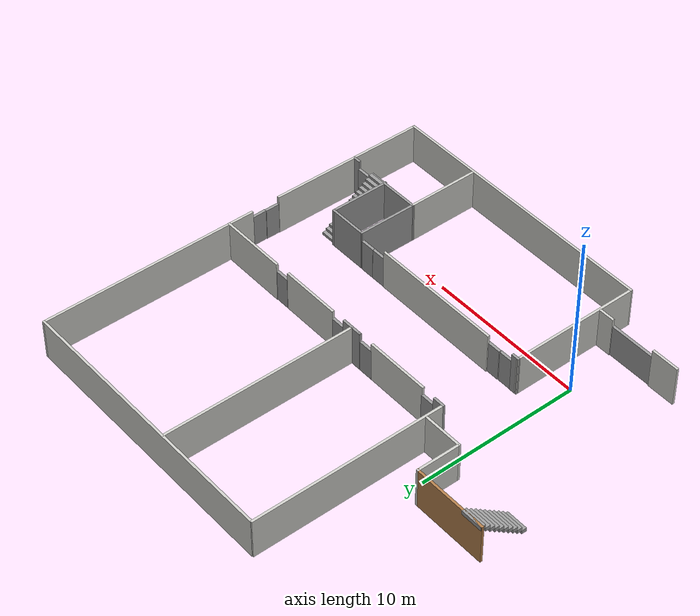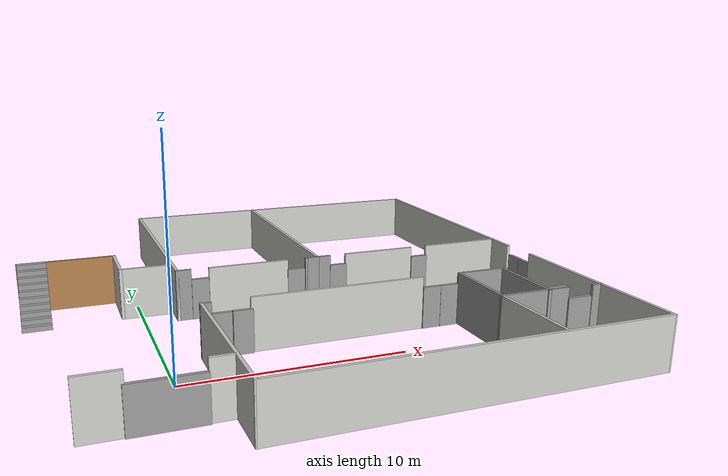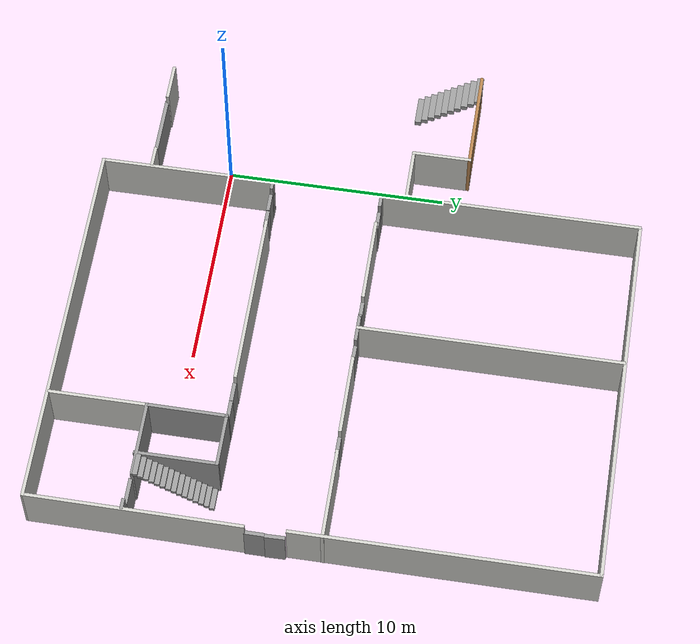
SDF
<sdf version="1.7">
 <model name="mts_dept">
  <pose>-3.28775 6.83696 0 0 -0 0</pose>
  <link name="Door_15">
   <collision name="Door_15_Collision">
    <geometry><box><size>1.25 0.17 2</size></box></geometry>
    <pose>0 0 1 0 -0 0</pose>
   </collision>
   <visual name="Door_15_Visual">
    <pose>0 0 1 0 -0 0</pose>
    <geometry><box><size>1.25 0.17 2</size></box></geometry>
    <material>
     <script><uri>file://media/materials/scripts/gazebo.material</uri><name>Gazebo/Grey</name></script>
    </material>
   </visual>
   <pose>21.2511 -8.1066 0 0 -0 0</pose>
  </link>
  <link name="Door_16">
   <collision name="Door_16_Collision">
    <geometry><box><size>0.9 0.17 2</size></box></geometry>
    <pose>0 0 1 0 -0 0</pose>
   </collision>
   <visual name="Door_16_Visual">
    <pose>0 0 1 0 -0 0</pose>
    <geometry><box><size>0.9 0.17 2</size></box></geometry>
    <material>
     <script><uri>file://media/materials/scripts/gazebo.material</uri><name>Gazebo/Grey</name></script>
    </material>
   </visual>
   <pose>16.6903 -4.48944 0 0 -0 0</pose>
  </link>
  <link name="Door_17">
   <collision name="Door_17_Collision">
    <geometry><box><size>0.9 0.17 2</size></box></geometry>
    <pose>0 0 1 0 -0 0</pose>
   </collision>
   <visual name="Door_17_Visual">
    <pose>0 0 1 0 -0 0</pose>
    <geometry><box><size>0.9 0.17 2</size></box></geometry>
    <material>
     <script><uri>file://media/materials/scripts/gazebo.material</uri><name>Gazebo/Grey</name></script>
    </material>
   </visual>
   <pose>15.7856 -4.48922 0 0 -0 0</pose>
  </link>
  <link name="Door_18">
   <collision name="Door_18_Collision">
    <geometry><box><size>0.9 0.17 2</size></box></geometry>
    <pose>0 0 1 0 -0 0</pose>
   </collision>
   <visual name="Door_18_Visual">
    <pose>0 0 1 0 -0 0</pose>
    <geometry><box><size>0.9 0.17 2</size></box></geometry>
    <material>
     <script><uri>file://media/materials/scripts/gazebo.material</uri><name>Gazebo/Grey</name></script>
    </material>
   </visual>
   <pose>5.7737 -4.55958 0 0 -0 0</pose>
  </link>
  <link name="Door_19">
   <collision name="Door_19_Collision">
    <geometry><box><size>0.9 0.17 2</size></box></geometry>
    <pose>0 0 1 0 -0 0</pose>
   </collision>
   <visual name="Door_19_Visual">
    <pose>0 0 1 0 -0 0</pose>
    <geometry><box><size>0.9 0.17 2</size></box></geometry>
    <material>
     <script><uri>file://media/materials/scripts/gazebo.material</uri><name>Gazebo/Grey</name></script>
    </material>
   </visual>
   <pose>6.71198 -4.54003 0 0 -0 0</pose>
  </link>
  <link name="Door_21">
   <collision name="Door_21_Collision">
    <geometry><box><size>3 0.17 2</size></box></geometry>
    <pose>0 0 1 0 -0 0</pose>
   </collision>
   <visual name="Door_21_Visual">
    <pose>0 0 1 0 -0 0</pose>
    <geometry><box><size>3 0.17 2</size></box></geometry>
    <material>
     <script><uri>file://media/materials/scripts/gazebo.material</uri><name>Gazebo/Grey</name></script>
    </material>
   </visual>
   <pose>2.44244 -10.26 0 0 -0 0</pose>
  </link>
  <link name="Door_24">
   <collision name="Door_24_Collision">
    <geometry><box><size>0.9 0.17 2</size></box></geometry>
    <pose>0 0 1 0 -0 0</pose>
   </collision>
   <visual name="Door_24_Visual">
    <pose>0 0 1 0 -0 0</pose>
    <geometry><box><size>0.9 0.17 2</size></box></geometry>
    <material>
     <script><uri>file://media/materials/scripts/gazebo.material</uri><name>Gazebo/Grey</name></script>
    </material>
   </visual>
   <pose>13.1152 0.479726 0 0 -0 0</pose>
  </link>
  <link name="Door_25">
   <collision name="Door_25_Collision">
    <geometry><box><size>0.9 0.17 2</size></box></geometry>
    <pose>0 0 1 0 -0 0</pose>
   </collision>
   <visual name="Door_25_Visual">
    <pose>0 0 1 0 -0 0</pose>
    <geometry><box><size>0.9 0.17 2</size></box></geometry>
    <material>
     <script><uri>file://media/materials/scripts/gazebo.material</uri><name>Gazebo/Grey</name></script>
    </material>
   </visual>
   <pose>10.8334 0.469069 0 0 -0 0</pose>
  </link>
  <link name="Door_26">
   <collision name="Door_26_Collision">
    <geometry><box><size>0.9 0.17 2</size></box></geometry>
    <pose>0 0 1 0 -0 0</pose>
   </collision>
   <visual name="Door_26_Visual">
    <pose>0 0 1 0 -0 0</pose>
    <geometry><box><size>0.9 0.17 2</size></box></geometry>
    <material>
     <script><uri>file://media/materials/scripts/gazebo.material</uri><name>Gazebo/Grey</name></script>
    </material>
   </visual>
   <pose>5.99959 0.502503 0 0 -0 0</pose>
  </link>
  <link name="Door_27">
   <collision name="Door_27_Collision">
    <geometry><box><size>0.9 0.17 2</size></box></geometry>
    <pose>0 0 1 0 -0 0</pose>
   </collision>
   <visual name="Door_27_Visual">
    <pose>0 0 1 0 -0 0</pose>
    <geometry><box><size>0.9 0.17 2</size></box></geometry>
    <material>
     <script><uri>file://media/materials/scripts/gazebo.material</uri><name>Gazebo/Grey</name></script>
    </material>
   </visual>
   <pose>17.7287 0.488148 0 0 -0 0</pose>
  </link>
  <link name="Door_28">
   <collision name="Door_28_Collision">
    <geometry><box><size>0.9 0.17 2</size></box></geometry>
    <pose>0 0 1 0 -0 0</pose>
   </collision>
   <visual name="Door_28_Visual">
    <pose>0 0 1 0 -0 0</pose>
    <geometry><box><size>0.9 0.17 2</size></box></geometry>
    <material>
     <script><uri>file://media/materials/scripts/gazebo.material</uri><name>Gazebo/Grey</name></script>
    </material>
   </visual>
   <pose>22.4147 -1.51478 0 0 -0 1.58982</pose>
  </link>
  <link name="Door_29">
   <collision name="Door_29_Collision">
    <geometry><box><size>0.9 0.17 2</size></box></geometry>
    <pose>0 0 1 0 -0 0</pose>
   </collision>
   <visual name="Door_29_Visual">
    <pose>0 0 1 0 -0 0</pose>
    <geometry><box><size>0.9 0.17 2</size></box></geometry>
    <material>
     <script><uri>file://media/materials/scripts/gazebo.material</uri><name>Gazebo/Grey</name></script>
    </material>
   </visual>
   <pose>22.3942 -2.40723 0 0 -0 1.5708</pose>
  </link>
  <link name="Stairs_2">
   <visual name="Stairs_2_Visual_0">
    <pose>20.1606 -4.63881 0.083333 0 -0 0</pose>
    <geometry><box><size>1 0.233333 0.166667</size></box></geometry>
    <material>
     <script><uri>file://media/materials/scripts/gazebo.material</uri><name>Gazebo/Grey</name></script>
     <ambient>1 1 1 1</ambient>
    </material>
    <meta><layer>0</layer></meta>
   </visual>
   <collision name="Stairs_2_Collision_0">
    <geometry><box><size>1 0.233333 0.166667</size></box></geometry>
    <pose>20.1606 -4.63881 0.083333 0 -0 0</pose>
   </collision>
   <visual name="Stairs_2_Visual_1">
    <pose>20.1606 -4.87214 0.25 0 -0 0</pose>
    <geometry><box><size>1 0.233333 0.166667</size></box></geometry>
    <material>
     <script><uri>file://media/materials/scripts/gazebo.material</uri><name>Gazebo/Grey</name></script>
     <ambient>1 1 1 1</ambient>
    </material>
    <meta><layer>0</layer></meta>
   </visual>
   <collision name="Stairs_2_Collision_1">
    <geometry><box><size>1 0.233333 0.166667</size></box></geometry>
    <pose>20.1606 -4.87214 0.25 0 -0 0</pose>
   </collision>
   <visual name="Stairs_2_Visual_2">
    <pose>20.1606 -5.10548 0.416667 0 -0 0</pose>
    <geometry><box><size>1 0.233333 0.166667</size></box></geometry>
    <material>
     <script><uri>file://media/materials/scripts/gazebo.material</uri><name>Gazebo/Grey</name></script>
     <ambient>1 1 1 1</ambient>
    </material>
    <meta><layer>0</layer></meta>
   </visual>
   <collision name="Stairs_2_Collision_2">
    <geometry><box><size>1 0.233333 0.166667</size></box></geometry>
    <pose>20.1606 -5.10548 0.416667 0 -0 0</pose>
   </collision>
   <visual name="Stairs_2_Visual_3">
    <pose>20.1606 -5.33881 0.583333 0 -0 0</pose>
    <geometry><box><size>1 0.233333 0.166667</size></box></geometry>
    <material>
     <script><uri>file://media/materials/scripts/gazebo.material</uri><name>Gazebo/Grey</name></script>
     <ambient>1 1 1 1</ambient>
    </material>
    <meta><layer>0</layer></meta>
   </visual>
   <collision name="Stairs_2_Collision_3">
    <geometry><box><size>1 0.233333 0.166667</size></box></geometry>
    <pose>20.1606 -5.33881 0.583333 0 -0 0</pose>
   </collision>
   <visual name="Stairs_2_Visual_4">
    <pose>20.1606 -5.57214 0.75 0 -0 0</pose>
    <geometry><box><size>1 0.233333 0.166667</size></box></geometry>
    <material>
     <script><uri>file://media/materials/scripts/gazebo.material</uri><name>Gazebo/Grey</name></script>
     <ambient>1 1 1 1</ambient>
    </material>
    <meta><layer>0</layer></meta>
   </visual>
   <collision name="Stairs_2_Collision_4">
    <geometry><box><size>1 0.233333 0.166667</size></box></geometry>
    <pose>20.1606 -5.57214 0.75 0 -0 0</pose>
   </collision>
   <visual name="Stairs_2_Visual_5">
    <pose>20.1606 -5.80548 0.916667 0 -0 0</pose>
    <geometry><box><size>1 0.233333 0.166667</size></box></geometry>
    <material>
     <script><uri>file://media/materials/scripts/gazebo.material</uri><name>Gazebo/Grey</name></script>
     <ambient>1 1 1 1</ambient>
    </material>
    <meta><layer>0</layer></meta>
   </visual>
   <collision name="Stairs_2_Collision_5">
    <geometry><box><size>1 0.233333 0.166667</size></box></geometry>
    <pose>20.1606 -5.80548 0.916667 0 -0 0</pose>
   </collision>
   <visual name="Stairs_2_Visual_6">
    <pose>20.1606 -6.03881 1.08333 0 -0 0</pose>
    <geometry><box><size>1 0.233333 0.166667</size></box></geometry>
    <material>
     <script><uri>file://media/materials/scripts/gazebo.material</uri><name>Gazebo/Grey</name></script>
     <ambient>1 1 1 1</ambient>
    </material>
    <meta><layer>0</layer></meta>
   </visual>
   <collision name="Stairs_2_Collision_6">
    <geometry><box><size>1 0.233333 0.166667</size></box></geometry>
    <pose>20.1606 -6.03881 1.08333 0 -0 0</pose>
   </collision>
   <visual name="Stairs_2_Visual_7">
    <pose>20.1606 -6.27214 1.25 0 -0 0</pose>
    <geometry><box><size>1 0.233333 0.166667</size></box></geometry>
    <material>
     <script><uri>file://media/materials/scripts/gazebo.material</uri><name>Gazebo/Grey</name></script>
     <ambient>1 1 1 1</ambient>
    </material>
    <meta><layer>0</layer></meta>
   </visual>
   <collision name="Stairs_2_Collision_7">
    <geometry><box><size>1 0.233333 0.166667</size></box></geometry>
    <pose>20.1606 -6.27214 1.25 0 -0 0</pose>
   </collision>
   <visual name="Stairs_2_Visual_8">
    <pose>20.1606 -6.50548 1.41667 0 -0 0</pose>
    <geometry><box><size>1 0.233333 0.166667</size></box></geometry>
    <material>
     <script><uri>file://media/materials/scripts/gazebo.material</uri><name>Gazebo/Grey</name></script>
     <ambient>1 1 1 1</ambient>
    </material>
    <meta><layer>0</layer></meta>
   </visual>
   <collision name="Stairs_2_Collision_8">
    <geometry><box><size>1 0.233333 0.166667</size></box></geometry>
    <pose>20.1606 -6.50548 1.41667 0 -0 0</pose>
   </collision>
   <visual name="Stairs_2_Visual_9">
    <pose>20.1606 -6.73881 1.58333 0 -0 0</pose>
    <geometry><box><size>1 0.233333 0.166667</size></box></geometry>
    <material>
     <script><uri>file://media/materials/scripts/gazebo.material</uri><name>Gazebo/Grey</name></script>
     <ambient>1 1 1 1</ambient>
    </material>
    <meta><layer>0</layer></meta>
   </visual>
   <collision name="Stairs_2_Collision_9">
    <geometry><box><size>1 0.233333 0.166667</size></box></geometry>
    <pose>20.1606 -6.73881 1.58333 0 -0 0</pose>
   </collision>
   <visual name="Stairs_2_Visual_10">
    <pose>20.1606 -6.97214 1.75 0 -0 0</pose>
    <geometry><box><size>1 0.233333 0.166667</size></box></geometry>
    <material>
     <script><uri>file://media/materials/scripts/gazebo.material</uri><name>Gazebo/Grey</name></script>
     <ambient>1 1 1 1</ambient>
    </material>
    <meta><layer>0</layer></meta>
   </visual>
   <collision name="Stairs_2_Collision_10">
    <geometry><box><size>1 0.233333 0.166667</size></box></geometry>
    <pose>20.1606 -6.97214 1.75 0 -0 0</pose>
   </collision>
   <visual name="Stairs_2_Visual_11">
    <pose>20.1606 -7.20548 1.91667 0 -0 0</pose>
    <geometry><box><size>1 0.233333 0.166667</size></box></geometry>
    <material>
     <script><uri>file://media/materials/scripts/gazebo.material</uri><name>Gazebo/Grey</name></script>
     <ambient>1 1 1 1</ambient>
    </material>
    <meta><layer>0</layer></meta>
   </visual>
   <collision name="Stairs_2_Collision_11">
    <geometry><box><size>1 0.233333 0.166667</size></box></geometry>
    <pose>20.1606 -7.20548 1.91667 0 -0 0</pose>
   </collision>
   <visual name="Stairs_2_Visual_12">
    <pose>20.1606 -7.43881 2.08333 0 -0 0</pose>
    <geometry><box><size>1 0.233333 0.166667</size></box></geometry>
    <material>
     <script><uri>file://media/materials/scripts/gazebo.material</uri><name>Gazebo/Grey</name></script>
     <ambient>1 1 1 1</ambient>
    </material>
    <meta><layer>0</layer></meta>
   </visual>
   <collision name="Stairs_2_Collision_12">
    <geometry><box><size>1 0.233333 0.166667</size></box></geometry>
    <pose>20.1606 -7.43881 2.08333 0 -0 0</pose>
   </collision>
   <visual name="Stairs_2_Visual_13">
    <pose>20.1606 -7.67214 2.25 0 -0 0</pose>
    <geometry><box><size>1 0.233333 0.166667</size></box></geometry>
    <material>
     <script><uri>file://media/materials/scripts/gazebo.material</uri><name>Gazebo/Grey</name></script>
     <ambient>1 1 1 1</ambient>
    </material>
    <meta><layer>0</layer></meta>
   </visual>
   <collision name="Stairs_2_Collision_13">
    <geometry><box><size>1 0.233333 0.166667</size></box></geometry>
    <pose>20.1606 -7.67214 2.25 0 -0 0</pose>
   </collision>
   <visual name="Stairs_2_Visual_14">
    <pose>20.1606 -7.90548 2.41667 0 -0 0</pose>
    <geometry><box><size>1 0.233333 0.166667</size></box></geometry>
    <material>
     <script><uri>file://media/materials/scripts/gazebo.material</uri><name>Gazebo/Grey</name></script>
     <ambient>1 1 1 1</ambient>
    </material>
    <meta><layer>0</layer></meta>
   </visual>
   <collision name="Stairs_2_Collision_14">
    <geometry><box><size>1 0.233333 0.166667</size></box></geometry>
    <pose>20.1606 -7.90548 2.41667 0 -0 0</pose>
   </collision>
  </link>
  <link name="Stairs_4">
   <visual name="Stairs_4_Visual_0">
    <pose>-1.55868 1.45214 0.125 0 0 -3.14159</pose>
    <geometry><box><size>1.36 0.304864 0.25</size></box></geometry>
    <material>
     <script><uri>file://media/materials/scripts/gazebo.material</uri><name>Gazebo/Grey</name></script>
     <ambient>0.368627 0.360784 0.392157 1</ambient>
    </material>
    <meta><layer>0</layer></meta>
   </visual>
   <collision name="Stairs_4_Collision_0">
    <geometry><box><size>1.36 0.304864 0.25</size></box></geometry>
    <pose>-1.55868 1.45214 0.125 0 0 -3.14159</pose>
   </collision>
   <visual name="Stairs_4_Visual_1">
    <pose>-1.55868 1.757 0.375 0 0 -3.14159</pose>
    <geometry><box><size>1.36 0.304864 0.25</size></box></geometry>
    <material>
     <script><uri>file://media/materials/scripts/gazebo.material</uri><name>Gazebo/Grey</name></script>
     <ambient>0.368627 0.360784 0.392157 1</ambient>
    </material>
    <meta><layer>0</layer></meta>
   </visual>
   <collision name="Stairs_4_Collision_1">
    <geometry><box><size>1.36 0.304864 0.25</size></box></geometry>
    <pose>-1.55868 1.757 0.375 0 0 -3.14159</pose>
   </collision>
   <visual name="Stairs_4_Visual_2">
    <pose>-1.55868 2.06187 0.625 0 0 -3.14159</pose>
    <geometry><box><size>1.36 0.304864 0.25</size></box></geometry>
    <material>
     <script><uri>file://media/materials/scripts/gazebo.material</uri><name>Gazebo/Grey</name></script>
     <ambient>0.368627 0.360784 0.392157 1</ambient>
    </material>
    <meta><layer>0</layer></meta>
   </visual>
   <collision name="Stairs_4_Collision_2">
    <geometry><box><size>1.36 0.304864 0.25</size></box></geometry>
    <pose>-1.55868 2.06187 0.625 0 0 -3.14159</pose>
   </collision>
   <visual name="Stairs_4_Visual_3">
    <pose>-1.55868 2.36673 0.875 0 0 -3.14159</pose>
    <geometry><box><size>1.36 0.304864 0.25</size></box></geometry>
    <material>
     <script><uri>file://media/materials/scripts/gazebo.material</uri><name>Gazebo/Grey</name></script>
     <ambient>0.368627 0.360784 0.392157 1</ambient>
    </material>
    <meta><layer>0</layer></meta>
   </visual>
   <collision name="Stairs_4_Collision_3">
    <geometry><box><size>1.36 0.304864 0.25</size></box></geometry>
    <pose>-1.55868 2.36673 0.875 0 0 -3.14159</pose>
   </collision>
   <visual name="Stairs_4_Visual_4">
    <pose>-1.55868 2.67159 1.125 0 0 -3.14159</pose>
    <geometry><box><size>1.36 0.304864 0.25</size></box></geometry>
    <material>
     <script><uri>file://media/materials/scripts/gazebo.material</uri><name>Gazebo/Grey</name></script>
     <ambient>0.368627 0.360784 0.392157 1</ambient>
    </material>
    <meta><layer>0</layer></meta>
   </visual>
   <collision name="Stairs_4_Collision_4">
    <geometry><box><size>1.36 0.304864 0.25</size></box></geometry>
    <pose>-1.55868 2.67159 1.125 0 0 -3.14159</pose>
   </collision>
   <visual name="Stairs_4_Visual_5">
    <pose>-1.55868 2.97646 1.375 0 0 -3.14159</pose>
    <geometry><box><size>1.36 0.304864 0.25</size></box></geometry>
    <material>
     <script><uri>file://media/materials/scripts/gazebo.material</uri><name>Gazebo/Grey</name></script>
     <ambient>0.368627 0.360784 0.392157 1</ambient>
    </material>
    <meta><layer>0</layer></meta>
   </visual>
   <collision name="Stairs_4_Collision_5">
    <geometry><box><size>1.36 0.304864 0.25</size></box></geometry>
    <pose>-1.55868 2.97646 1.375 0 0 -3.14159</pose>
   </collision>
   <visual name="Stairs_4_Visual_6">
    <pose>-1.55868 3.28132 1.625 0 0 -3.14159</pose>
    <geometry><box><size>1.36 0.304864 0.25</size></box></geometry>
    <material>
     <script><uri>file://media/materials/scripts/gazebo.material</uri><name>Gazebo/Grey</name></script>
     <ambient>0.368627 0.360784 0.392157 1</ambient>
    </material>
    <meta><layer>0</layer></meta>
   </visual>
   <collision name="Stairs_4_Collision_6">
    <geometry><box><size>1.36 0.304864 0.25</size></box></geometry>
    <pose>-1.55868 3.28132 1.625 0 0 -3.14159</pose>
   </collision>
   <visual name="Stairs_4_Visual_7">
    <pose>-1.55868 3.58619 1.875 0 0 -3.14159</pose>
    <geometry><box><size>1.36 0.304864 0.25</size></box></geometry>
    <material>
     <script><uri>file://media/materials/scripts/gazebo.material</uri><name>Gazebo/Grey</name></script>
     <ambient>0.368627 0.360784 0.392157 1</ambient>
    </material>
    <meta><layer>0</layer></meta>
   </visual>
   <collision name="Stairs_4_Collision_7">
    <geometry><box><size>1.36 0.304864 0.25</size></box></geometry>
    <pose>-1.55868 3.58619 1.875 0 0 -3.14159</pose>
   </collision>
   <visual name="Stairs_4_Visual_8">
    <pose>-1.55868 3.89105 2.125 0 0 -3.14159</pose>
    <geometry><box><size>1.36 0.304864 0.25</size></box></geometry>
    <material>
     <script><uri>file://media/materials/scripts/gazebo.material</uri><name>Gazebo/Grey</name></script>
     <ambient>0.368627 0.360784 0.392157 1</ambient>
    </material>
    <meta><layer>0</layer></meta>
   </visual>
   <collision name="Stairs_4_Collision_8">
    <geometry><box><size>1.36 0.304864 0.25</size></box></geometry>
    <pose>-1.55868 3.89105 2.125 0 0 -3.14159</pose>
   </collision>
   <visual name="Stairs_4_Visual_9">
    <pose>-1.55868 4.19592 2.375 0 0 -3.14159</pose>
    <geometry><box><size>1.36 0.304864 0.25</size></box></geometry>
    <material>
     <script><uri>file://media/materials/scripts/gazebo.material</uri><name>Gazebo/Grey</name></script>
     <ambient>0.368627 0.360784 0.392157 1</ambient>
    </material>
    <meta><layer>0</layer></meta>
   </visual>
   <collision name="Stairs_4_Collision_9">
    <geometry><box><size>1.36 0.304864 0.25</size></box></geometry>
    <pose>-1.55868 4.19592 2.375 0 0 -3.14159</pose>
   </collision>
  </link>
  <link name="Wall_111">
   <collision name="Wall_111_Collision">
    <geometry><box><size>3.5 0.15 2.5</size></box></geometry>
    <pose>0 0 1.25 0 -0 0</pose>
   </collision>
   <visual name="Wall_111_Visual">
    <pose>0 0 1.25 0 -0 0</pose>
    <geometry><box><size>3.5 0.15 2.5</size></box></geometry>
    <material>
     <script><uri>file://media/materials/scripts/gazebo.material</uri><name>Gazebo/Grey</name></script>
     <ambient>1 1 1 1</ambient>
    </material>
    <meta><layer>0</layer></meta>
   </visual>
   <pose>18.9077 -8.02797 0 0 -0 3.14159</pose>
  </link>
  <link name="Wall_112">
   <collision name="Wall_112_Collision">
    <geometry><box><size>4.5 0.15 2.5</size></box></geometry>
    <pose>0 0 1.25 0 -0 0</pose>
   </collision>
   <visual name="Wall_112_Visual">
    <pose>0 0 1.25 0 -0 0</pose>
    <geometry><box><size>4.5 0.15 2.5</size></box></geometry>
    <material>
     <script><uri>file://media/materials/scripts/gazebo.material</uri><name>Gazebo/CeilingTiled</name></script>
     <ambient>1 1 1 1</ambient>
    </material>
    <meta><layer>0</layer></meta>
   </visual>
   <pose>17.2327 -10.203 0 0 -0 -1.5708</pose>
  </link>
  <link name="Wall_114">
   <collision name="Wall_114_Collision">
    <geometry><box><size>0.5 0.15 2.5</size></box></geometry>
    <pose>0 0 1.25 0 -0 0</pose>
   </collision>
   <visual name="Wall_114_Visual">
    <pose>0 0 1.25 0 -0 0</pose>
    <geometry><box><size>0.5 0.15 2.5</size></box></geometry>
    <material>
     <script><uri>file://media/materials/scripts/gazebo.material</uri><name>Gazebo/Grey</name></script>
     <ambient>1 1 1 1</ambient>
    </material>
    <meta><layer>0</layer></meta>
   </visual>
   <pose>22.0983 -8.14592 0 0 -0 3.14159</pose>
  </link>
  <link name="Wall_116">
   <collision name="Wall_116_Collision">
    <geometry><box><size>2.5 0.15 2.5</size></box></geometry>
    <pose>0 0 1.25 0 -0 0</pose>
   </collision>
   <visual name="Wall_116_Visual">
    <pose>0 0 1.25 0 -0 0</pose>
    <geometry><box><size>2.5 0.15 2.5</size></box></geometry>
    <material>
     <script><uri>file://media/materials/scripts/gazebo.material</uri><name>Gazebo/Grey</name></script>
     <ambient>1 1 1 1</ambient>
    </material>
    <meta><layer>0</layer></meta>
   </visual>
   <pose>18.4248 -4.48944 0 0 -0 3.14159</pose>
  </link>
  <link name="Wall_117">
   <collision name="Wall_117_Collision">
    <geometry><box><size>3.68857 0.15 2.5</size></box></geometry>
    <pose>0 0 1.25 0 -0 0</pose>
   </collision>
   <visual name="Wall_117_Visual">
    <pose>0 0 1.25 0 -0 0</pose>
    <geometry><box><size>3.68857 0.15 2.5</size></box></geometry>
    <material>
     <script><uri>file://media/materials/scripts/gazebo.material</uri><name>Gazebo/Grey</name></script>
     <ambient>1 1 1 1</ambient>
    </material>
    <meta><layer>0</layer></meta>
   </visual>
   <pose>17.2412 -6.2587 0 0 -0 -1.57562</pose>
  </link>
  <link name="Wall_119">
   <collision name="Wall_119_Collision">
    <geometry><box><size>8.25 0.15 2.5</size></box></geometry>
    <pose>0 0 1.25 0 -0 0</pose>
   </collision>
   <visual name="Wall_119_Visual">
    <pose>0 0 1.25 0 -0 0</pose>
    <geometry><box><size>8.25 0.15 2.5</size></box></geometry>
    <material>
     <script><uri>file://media/materials/scripts/gazebo.material</uri><name>Gazebo/CeilingTiled</name></script>
     <ambient>1 1 1 1</ambient>
    </material>
    <meta><layer>0</layer></meta>
   </visual>
   <pose>11.192 -4.46184 0 0 -0 0</pose>
  </link>
  <link name="Wall_122">
   <collision name="Wall_122_Collision">
    <geometry><box><size>0.5 0.15 2.5</size></box></geometry>
    <pose>0 0 1.25 0 -0 0</pose>
   </collision>
   <visual name="Wall_122_Visual">
    <pose>0 0 1.25 0 -0 0</pose>
    <geometry><box><size>0.5 0.15 2.5</size></box></geometry>
    <material>
     <script><uri>file://media/materials/scripts/gazebo.material</uri><name>Gazebo/Grey</name></script>
     <ambient>1 1 1 1</ambient>
    </material>
    <meta><layer>0</layer></meta>
   </visual>
   <pose>5.10893 -4.53609 0 0 -0 0</pose>
  </link>
  <link name="Wall_126">
   <collision name="Wall_126_Collision">
    <geometry><box><size>3.75 0.15 2.5</size></box></geometry>
    <pose>0 0 1.25 0 -0 0</pose>
   </collision>
   <visual name="Wall_126_Visual">
    <pose>0 0 1.25 0 -0 0</pose>
    <geometry><box><size>3.75 0.15 2.5</size></box></geometry>
    <material>
     <script><uri>file://media/materials/scripts/gazebo.material</uri><name>Gazebo/Grey</name></script>
     <ambient>1 1 1 1</ambient>
    </material>
    <meta><layer>0</layer></meta>
   </visual>
   <pose>19.5998 -6.28944 0 0 -0 -1.5708</pose>
  </link>
  <link name="Wall_135">
   <collision name="Wall_135_Collision">
    <geometry><box><size>2.5 0.15 2.5</size></box></geometry>
    <pose>0 0 1.25 0 -0 0</pose>
   </collision>
   <visual name="Wall_135_Visual">
    <pose>0 0 1.25 0 -0 0</pose>
    <geometry><box><size>2.5 0.15 2.5</size></box></geometry>
    <material>
     <script><uri>file://media/materials/scripts/gazebo.material</uri><name>Gazebo/CeilingTiled</name></script>
     <ambient>1 1 1 1</ambient>
    </material>
    <meta><layer>0</layer></meta>
   </visual>
   <pose>3.56759 1.65434 0 0 -0 0</pose>
  </link>
  <link name="Wall_137">
   <collision name="Wall_137_Collision">
    <geometry><box><size>2.75 0.15 2.5</size></box></geometry>
    <pose>0 0 1.25 0 -0 0</pose>
   </collision>
   <visual name="Wall_137_Visual">
    <pose>0 0 1.25 0 -0 0</pose>
    <geometry><box><size>2.75 0.15 2.5</size></box></geometry>
    <material>
     <script><uri>file://media/materials/scripts/gazebo.material</uri><name>Gazebo/CeilingTiled</name></script>
     <ambient>1 1 1 1</ambient>
    </material>
    <meta><layer>0</layer></meta>
   </visual>
   <pose>2.39259 2.95433 0 0 -0 1.5708</pose>
  </link>
  <link name="Wall_138">
   <collision name="Wall_138_Collision">
    <geometry><box><size>4.75 0.15 2.5</size></box></geometry>
    <pose>0 0 1.25 0 -0 0</pose>
   </collision>
   <visual name="Wall_138_Visual">
    <pose>0 0 1.25 0 -0 0</pose>
    <geometry><box><size>4.75 0.15 2.5</size></box></geometry>
    <material>
     <script><uri>file://media/materials/scripts/gazebo.material</uri><name>Gazebo/Wood</name></script>
     <ambient>1 1 1 1</ambient>
    </material>
    <meta><layer>0</layer></meta>
   </visual>
   <pose>0.092593 4.25433 0 0 -0 3.14159</pose>
  </link>
  <link name="Wall_145">
   <collision name="Wall_145_Collision">
    <geometry><box><size>1.75 0.15 2.5</size></box></geometry>
    <pose>0 0 1.25 0 -0 0</pose>
   </collision>
   <visual name="Wall_145_Visual">
    <pose>0 0 1.25 0 -0 0</pose>
    <geometry><box><size>1.75 0.15 2.5</size></box></geometry>
    <material>
     <script><uri>file://media/materials/scripts/gazebo.material</uri><name>Gazebo/CeilingTiled</name></script>
     <ambient>1 1 1 1</ambient>
    </material>
    <meta><layer>0</layer></meta>
   </visual>
   <pose>0.168158 -10.2005 0 0 -0 0</pose>
  </link>
  <link name="Wall_147">
   <collision name="Wall_147_Collision">
    <geometry><box><size>1 0.15 2.5</size></box></geometry>
    <pose>0 0 1.25 0 -0 0</pose>
   </collision>
   <visual name="Wall_147_Visual">
    <pose>0 0 1.25 0 -0 0</pose>
    <geometry><box><size>1 0.15 2.5</size></box></geometry>
    <material>
     <script><uri>file://media/materials/scripts/gazebo.material</uri><name>Gazebo/CeilingTiled</name></script>
     <ambient>1 1 1 1</ambient>
    </material>
    <meta><layer>0</layer></meta>
   </visual>
   <pose>4.41336 -10.2005 0 0 -0 0</pose>
  </link>
  <link name="Wall_170">
   <collision name="Wall_170_Collision">
    <geometry><box><size>12 0.15 2.5</size></box></geometry>
    <pose>0 0 1.25 0 -0 0</pose>
   </collision>
   <visual name="Wall_170_Visual">
    <pose>0 0 1.25 0 -0 0</pose>
    <geometry><box><size>12 0.15 2.5</size></box></geometry>
    <material>
     <script><uri>file://media/materials/scripts/gazebo.material</uri><name>Gazebo/CeilingTiled</name></script>
     <ambient>1 1 1 1</ambient>
    </material>
    <meta><layer>0</layer></meta>
   </visual>
   <pose>11.9938 6.40566 0 0 -0 1.5708</pose>
  </link>
  <link name="Wall_172">
   <collision name="Wall_172_Collision">
    <geometry><box><size>0.75 0.15 2.5</size></box></geometry>
    <pose>0 0 1.25 0 -0 0</pose>
   </collision>
   <visual name="Wall_172_Visual">
    <pose>0 0 1.25 0 -0 0</pose>
    <geometry><box><size>0.75 0.15 2.5</size></box></geometry>
    <material>
     <script><uri>file://media/materials/scripts/gazebo.material</uri><name>Gazebo/Grey</name></script>
     <ambient>1 1 1 1</ambient>
    </material>
    <meta><layer>0</layer></meta>
   </visual>
   <pose>5.17582 0.518761 0 0 -0 0</pose>
  </link>
  <link name="Wall_174">
   <collision name="Wall_174_Collision">
    <geometry><box><size>4 0.15 2.5</size></box></geometry>
    <pose>0 0 1.25 0 -0 0</pose>
   </collision>
   <visual name="Wall_174_Visual">
    <pose>0 0 1.25 0 -0 0</pose>
    <geometry><box><size>4 0.15 2.5</size></box></geometry>
    <material>
     <script><uri>file://media/materials/scripts/gazebo.material</uri><name>Gazebo/CeilingTiled</name></script>
     <ambient>1 1 1 1</ambient>
    </material>
    <meta><layer>0</layer></meta>
   </visual>
   <pose>8.40586 0.475907 0 0 -0 0</pose>
  </link>
  <link name="Wall_179">
   <collision name="Wall_179_Collision">
    <geometry><box><size>0.75 0.15 2.5</size></box></geometry>
    <pose>0 0 1.25 0 -0 0</pose>
   </collision>
   <visual name="Wall_179_Visual">
    <pose>0 0 1.25 0 -0 0</pose>
    <geometry><box><size>0.75 0.15 2.5</size></box></geometry>
    <material>
     <script><uri>file://media/materials/scripts/gazebo.material</uri><name>Gazebo/Grey</name></script>
     <ambient>1 1 1 1</ambient>
    </material>
    <meta><layer>0</layer></meta>
   </visual>
   <pose>11.6938 0.48066 0 0 -0 3.14159</pose>
  </link>
  <link name="Wall_180">
   <collision name="Wall_180_Collision">
    <geometry><box><size>0.15 0.15 2.5</size></box></geometry>
    <pose>0 0 1.25 0 -0 0</pose>
   </collision>
   <visual name="Wall_180_Visual">
    <pose>0 0 1.25 0 -0 0</pose>
    <geometry><box><size>0.15 0.15 2.5</size></box></geometry>
    <material>
     <script><uri>file://media/materials/scripts/gazebo.material</uri><name>Gazebo/Grey</name></script>
     <ambient>1 1 1 1</ambient>
    </material>
    <meta><layer>0</layer></meta>
   </visual>
   <pose>11.3938 0.48066 0 0 -0 0</pose>
  </link>
  <link name="Wall_182">
   <collision name="Wall_182_Collision">
    <geometry><box><size>0.75 0.15 2.5</size></box></geometry>
    <pose>0 0 1.25 0 -0 0</pose>
   </collision>
   <visual name="Wall_182_Visual">
    <pose>0 0 1.25 0 -0 0</pose>
    <geometry><box><size>0.75 0.15 2.5</size></box></geometry>
    <material>
     <script><uri>file://media/materials/scripts/gazebo.material</uri><name>Gazebo/Grey</name></script>
     <ambient>1 1 1 1</ambient>
    </material>
    <meta><layer>0</layer></meta>
   </visual>
   <pose>12.2938 0.48066 0 0 -0 0</pose>
  </link>
  <link name="Wall_184">
   <collision name="Wall_184_Collision">
    <geometry><box><size>3.75 0.15 2.5</size></box></geometry>
    <pose>0 0 1.25 0 -0 0</pose>
   </collision>
   <visual name="Wall_184_Visual">
    <pose>0 0 1.25 0 -0 0</pose>
    <geometry><box><size>3.75 0.15 2.5</size></box></geometry>
    <material>
     <script><uri>file://media/materials/scripts/gazebo.material</uri><name>Gazebo/CeilingTiled</name></script>
     <ambient>1 1 1 1</ambient>
    </material>
    <meta><layer>0</layer></meta>
   </visual>
   <pose>15.3796 0.498072 0 0 -0 0</pose>
  </link>
  <link name="Wall_186">
   <collision name="Wall_186_Collision">
    <geometry><box><size>4.25 0.15 2.5</size></box></geometry>
    <pose>0 0 1.25 0 -0 0</pose>
   </collision>
   <visual name="Wall_186_Visual">
    <pose>0 0 1.25 0 -0 0</pose>
    <geometry><box><size>4.25 0.15 2.5</size></box></geometry>
    <material>
     <script><uri>file://media/materials/scripts/gazebo.material</uri><name>Gazebo/CeilingTiled</name></script>
     <ambient>1 1 1 1</ambient>
    </material>
    <meta><layer>0</layer></meta>
   </visual>
   <pose>20.2638 0.52797 0 0 -0 0</pose>
  </link>
  <link name="Wall_188">
   <collision name="Wall_188_Collision">
    <geometry><box><size>9.71607 0.15 2.5</size></box></geometry>
    <pose>0 0 1.25 0 -0 0</pose>
   </collision>
   <visual name="Wall_188_Visual">
    <pose>0 0 1.25 0 -0 0</pose>
    <geometry><box><size>9.71607 0.15 2.5</size></box></geometry>
    <material>
     <script><uri>file://media/materials/scripts/gazebo.material</uri><name>Gazebo/CeilingTiled</name></script>
     <ambient>1 1 1 1</ambient>
    </material>
    <meta><layer>0</layer></meta>
   </visual>
   <pose>22.3307 -7.67153 0 0 -0 -1.57688</pose>
  </link>
  <link name="Wall_190">
   <collision name="Wall_190_Collision">
    <geometry><box><size>13.5 0.15 2.5</size></box></geometry>
    <pose>0 0 1.25 0 -0 0</pose>
   </collision>
   <visual name="Wall_190_Visual">
    <pose>0 0 1.25 0 -0 0</pose>
    <geometry><box><size>13.5 0.15 2.5</size></box></geometry>
    <material>
     <script><uri>file://media/materials/scripts/gazebo.material</uri><name>Gazebo/CeilingTiled</name></script>
     <ambient>1 1 1 1</ambient>
    </material>
    <meta><layer>0</layer></meta>
   </visual>
   <pose>22.3016 5.72053 0 0 -0 -1.5708</pose>
  </link>
  <link name="Wall_35">
   <collision name="Wall_35_Collision">
    <geometry><box><size>17.5 0.15 2.5</size></box></geometry>
    <pose>0 0 1.25 0 -0 0</pose>
   </collision>
   <visual name="Wall_35_Visual">
    <pose>0 0 1.25 0 -0 0</pose>
    <geometry><box><size>17.5 0.15 2.5</size></box></geometry>
    <material>
     <script><uri>file://media/materials/scripts/gazebo.material</uri><name>Gazebo/CeilingTiled</name></script>
     <ambient>1 1 1 1</ambient>
    </material>
    <meta><layer>0</layer></meta>
   </visual>
   <pose>13.6266 12.3955 0 0 -0 3.14159</pose>
  </link>
  <link name="Wall_50">
   <collision name="Wall_50_Collision">
    <geometry><box><size>8.0684 0.15 2.5</size></box></geometry>
    <pose>0 0 1.25 0 -0 0</pose>
   </collision>
   <visual name="Wall_50_Visual">
    <pose>0 0 1.25 0 -0 0</pose>
    <geometry><box><size>8.0684 0.15 2.5</size></box></geometry>
    <material>
     <script><uri>file://media/materials/scripts/gazebo.material</uri><name>Gazebo/CeilingTiled</name></script>
     <ambient>1 1 1 1</ambient>
    </material>
    <meta><layer>0</layer></meta>
   </visual>
   <pose>4.94279 -8.49528 0 0 -0 -1.56856</pose>
  </link>
  <link name="Wall_55">
   <collision name="Wall_55_Collision">
    <geometry><box><size>12 0.15 2.5</size></box></geometry>
    <pose>0 0 1.25 0 -0 0</pose>
   </collision>
   <visual name="Wall_55_Visual">
    <pose>0 0 1.25 0 -0 0</pose>
    <geometry><box><size>12 0.15 2.5</size></box></geometry>
    <material>
     <script><uri>file://media/materials/scripts/gazebo.material</uri><name>Gazebo/CeilingTiled</name></script>
     <ambient>1 1 1 1</ambient>
    </material>
    <meta><layer>0</layer></meta>
   </visual>
   <pose>4.87582 6.44376 0 0 -0 1.5708</pose>
  </link>
  <link name="Wall_6">
   <collision name="Wall_6_Collision">
    <geometry><box><size>17.5 0.15 2.5</size></box></geometry>
    <pose>0 0 1.25 0 -0 0</pose>
   </collision>
   <visual name="Wall_6_Visual">
    <pose>0 0 1.25 0 -0 0</pose>
    <geometry><box><size>17.5 0.15 2.5</size></box></geometry>
    <material>
     <script><uri>file://media/materials/scripts/gazebo.material</uri><name>Gazebo/CeilingTiled</name></script>
     <ambient>1 1 1 1</ambient>
    </material>
    <meta><layer>0</layer></meta>
   </visual>
   <pose>13.6266 -12.4545 0 0 -0 0</pose>
  </link>
  <static>1</static>
 </model>
</sdf>
